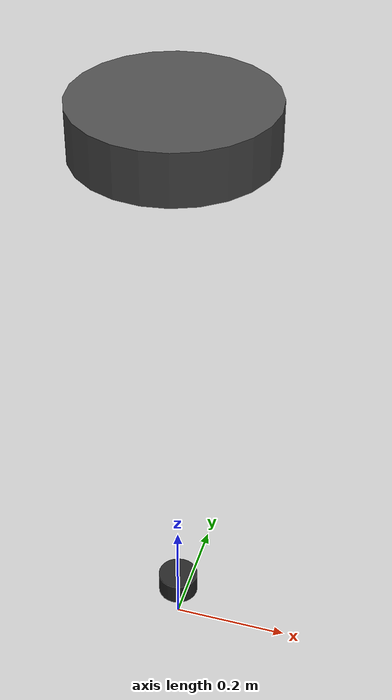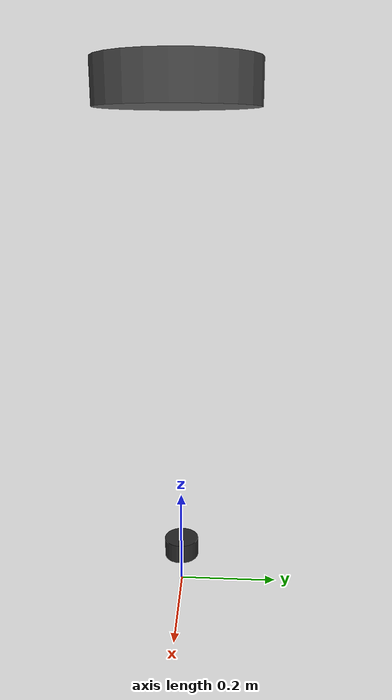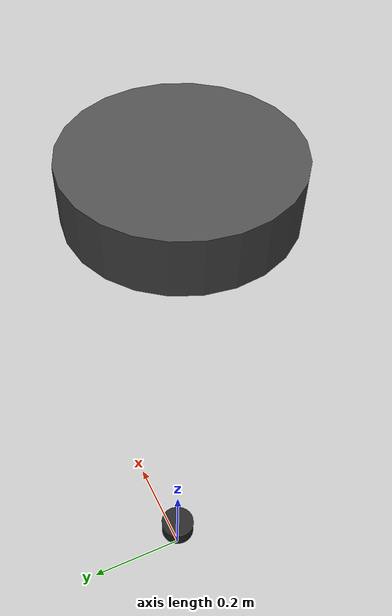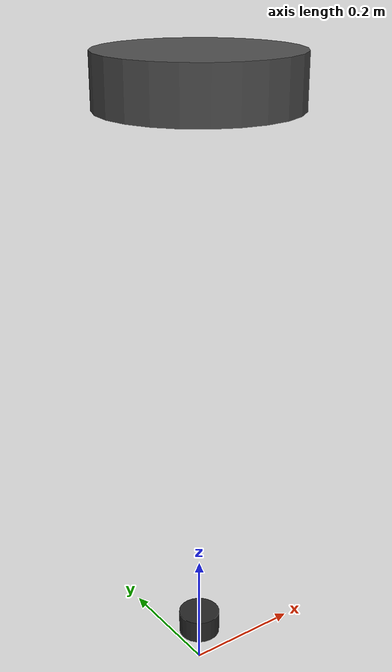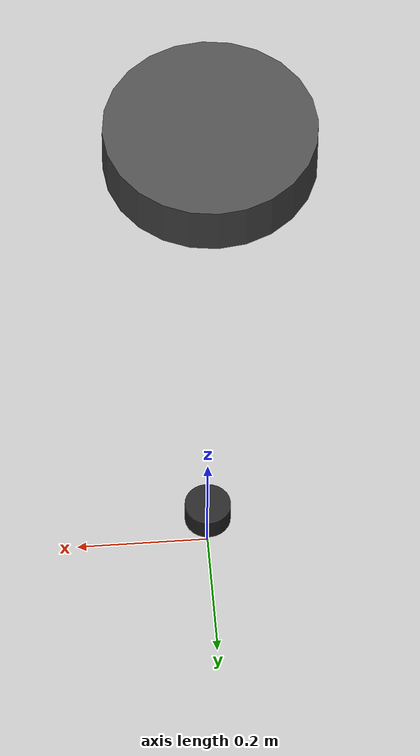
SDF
<?xml version="1.0"?>
<sdf version="1.6">
  <model name="quadrotor_mid360">
    <link name="base_link">
      <pose>0 0 1 0 0 0</pose>
      <inertial>
        <mass>1.5</mass>
        <inertia>
          <ixx>0.02</ixx> <ixy>0</ixy> <ixz>0</ixz>
          <iyy>0.02</iyy> <iyz>0</iyz>
          <izz>0.035</izz>
        </inertia>
      </inertial>
      <collision name="collision">
        <geometry><cylinder><radius>0.15</radius><length>0.08</length></cylinder></geometry>
      </collision>
      <visual name="visual">
        <geometry><cylinder><radius>0.15</radius><length>0.08</length></cylinder></geometry>
        <material>
          <ambient>0.2 0.2 0.2 1</ambient>
          <diffuse>0.3 0.3 0.3 1</diffuse>
          <specular>0.1 0.1 0.1 1</specular>
        </material>
      </visual>
    </link>

    <link name="mid360_link">
      <pose>0 0 0.08 0 0 0</pose>
      <inertial>
        <mass>0.265</mass>
        <inertia>
          <ixx>0.0002</ixx> <ixy>0</ixy> <ixz>0</ixz>
          <iyy>0.0002</iyy> <iyz>0</iyz>
          <izz>0.0002</izz>
        </inertia>
      </inertial>
      <collision name="mid360_collision">
        <geometry><cylinder><radius>0.035</radius><length>0.04</length></cylinder></geometry>
      </collision>
      <visual name="mid360_visual">
        <geometry><cylinder><radius>0.035</radius><length>0.04</length></cylinder></geometry>
        <material>
          <ambient>0.1 0.1 0.1 1</ambient>
          <diffuse>0.15 0.15 0.15 1</diffuse>
          <specular>0.1 0.1 0.1 1</specular>
        </material>
      </visual>
      <sensor name="mid360_ray" type="ray">
        <pose>0 0 0 0 0 0</pose>
        <always_on>1</always_on>
        <visualize>0</visualize>
        <update_rate>10</update_rate>
        <ray>
          <scan>
            <horizontal>
              <samples>720</samples>
              <resolution>1</resolution>
              <min_angle>-3.14159265359</min_angle>
              <max_angle>3.14159265359</max_angle>
            </horizontal>
            <vertical>
              <samples>64</samples>
              <resolution>1</resolution>
              <min_angle>-0.12217304764</min_angle>
              <max_angle>0.90757121104</max_angle>
            </vertical>
          </scan>
          <range>
            <min>0.1</min>
            <max>40.0</max>
            <resolution>0.02</resolution>
          </range>
          <noise>
            <type>gaussian</type>
            <mean>0.0</mean>
            <stddev>0.01</stddev>
          </noise>
        </ray>
        <plugin name="gazebo_ros_mid360_controller" filename="libgazebo_ros_velodyne_laser.so">
          <topicName>/mid360/points</topicName>
          <frameName>mid360_link</frameName>
          <min_range>0.1</min_range>
          <max_range>40.0</max_range>
          <gaussianNoise>0.01</gaussianNoise>
          <organize_cloud>true</organize_cloud>
        </plugin>
      </sensor>
    </link>

    <joint name="mid360_joint" type="revolute">
      <parent>base_link</parent>
      <child>mid360_link</child>
      <pose>0 0 0.08 0 0 0</pose>
      <axis><xyz>0 0 1</xyz></axis>
    </joint>

    <plugin name="p3d_ground_truth" filename="libgazebo_ros_p3d.so">
      <alwaysOn>true</alwaysOn>
      <updateRate>100.0</updateRate>
      <bodyName>base_link</bodyName>
      <topicName>/ground_truth/state</topicName>
      <frameName>map</frameName>
      <xyzOffset>0 0 0</xyzOffset>
      <rpyOffset>0 0 0</rpyOffset>
      <gaussianNoise>0</gaussianNoise>
    </plugin>
  </model>
</sdf>
